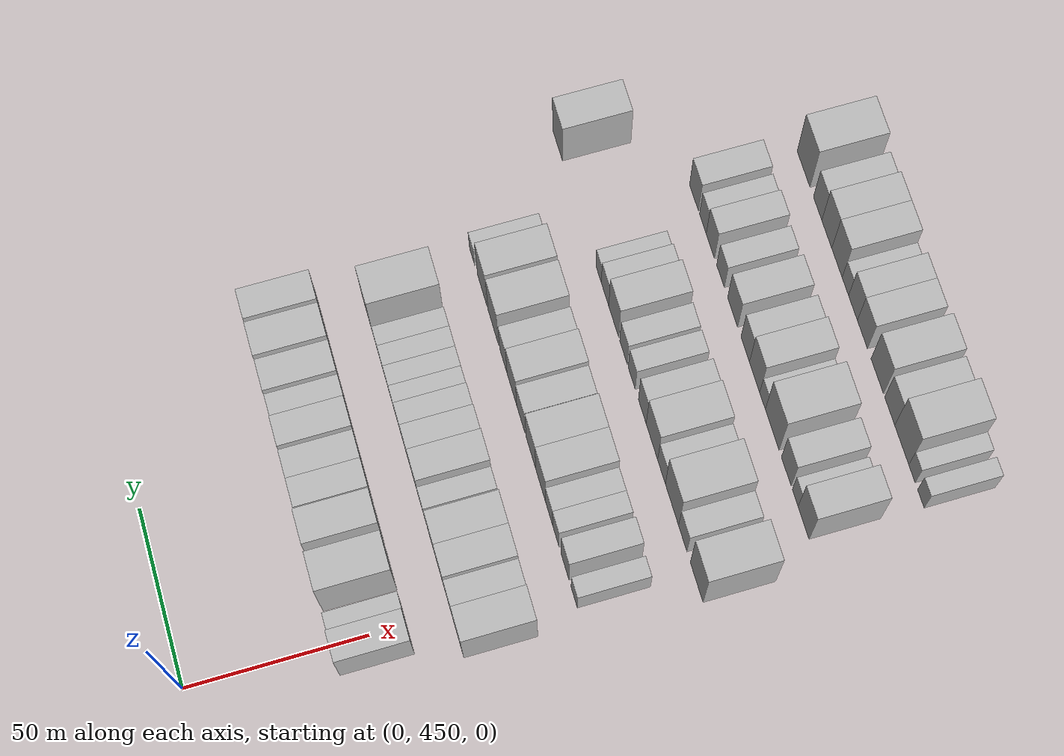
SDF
<sdf version="1.6">
 <world name="default">
  <model name="building_112">
   <static>1</static>
   <pose>50.0000 446.2338 0 0.000000 0.000000 0.000000</pose>
   <link name="link">
    <pose>0 0 9.00 0 0 0</pose>
    <collision name="collision"><geometry><box><size>20.0000 8.6609 18.0000</size></box></geometry></collision>
    <visual name="visual">
     <cast_shadows>0</cast_shadows>
     <geometry><box><size>20.0000 8.6609 18.0000</size></box></geometry>
     <material>
      <script>
       <uri>model://HANNAS_wall/materials/scripts</uri>
       <uri>model://HANNAS_wall/materials/textures</uri>
       <name>vrc/HANNAS_wall</name>
      </script>
     </material>
    </visual>
   </link>
  </model>
  <model name="building_113">
   <static>1</static>
   <pose>50.0000 453.5342 0 0.000000 0.000000 0.000000</pose>
   <link name="link">
    <pose>0 0 6.00 0 0 0</pose>
    <collision name="collision"><geometry><box><size>20.0000 5.9399 12.0000</size></box></geometry></collision>
    <visual name="visual">
     <cast_shadows>0</cast_shadows>
     <geometry><box><size>20.0000 5.9399 12.0000</size></box></geometry>
     <material>
      <script>
       <uri>model://HANNAS_wall/materials/scripts</uri>
       <uri>model://HANNAS_wall/materials/textures</uri>
       <name>vrc/HANNAS_wall</name>
      </script>
     </material>
    </visual>
   </link>
  </model>
  <model name="building_114">
   <static>1</static>
   <pose>50.0000 464.8538 0 0.000000 0.000000 0.000000</pose>
   <link name="link">
    <pose>0 0 12.00 0 0 0</pose>
    <collision name="collision"><geometry><box><size>20.0000 10.6993 24.0000</size></box></geometry></collision>
    <visual name="visual">
     <cast_shadows>0</cast_shadows>
     <geometry><box><size>20.0000 10.6993 24.0000</size></box></geometry>
     <material>
      <script>
       <uri>model://HANNAS_wall/materials/scripts</uri>
       <uri>model://HANNAS_wall/materials/textures</uri>
       <name>vrc/HANNAS_wall</name>
      </script>
     </material>
    </visual>
   </link>
  </model>
  <model name="building_115">
   <static>1</static>
   <pose>50.0000 477.0107 0 0.000000 0.000000 0.000000</pose>
   <link name="link">
    <pose>0 0 12.00 0 0 0</pose>
    <collision name="collision"><geometry><box><size>20.0000 9.6145 24.0000</size></box></geometry></collision>
    <visual name="visual">
     <cast_shadows>0</cast_shadows>
     <geometry><box><size>20.0000 9.6145 24.0000</size></box></geometry>
     <material>
      <script>
       <uri>model://HANNAS_wall/materials/scripts</uri>
       <uri>model://HANNAS_wall/materials/textures</uri>
       <name>vrc/HANNAS_wall</name>
      </script>
     </material>
    </visual>
   </link>
  </model>
  <model name="building_116">
   <static>1</static>
   <pose>50.0000 487.8643 0 0.000000 0.000000 0.000000</pose>
   <link name="link">
    <pose>0 0 9.00 0 0 0</pose>
    <collision name="collision"><geometry><box><size>20.0000 8.0927 18.0000</size></box></geometry></collision>
    <visual name="visual">
     <cast_shadows>0</cast_shadows>
     <geometry><box><size>20.0000 8.0927 18.0000</size></box></geometry>
     <material>
      <script>
       <uri>model://HANNAS_wall/materials/scripts</uri>
       <uri>model://HANNAS_wall/materials/textures</uri>
       <name>vrc/HANNAS_wall</name>
      </script>
     </material>
    </visual>
   </link>
  </model>
  <model name="building_117">
   <static>1</static>
   <pose>50.0000 495.8843 0 0.000000 0.000000 0.000000</pose>
   <link name="link">
    <pose>0 0 9.00 0 0 0</pose>
    <collision name="collision"><geometry><box><size>20.0000 7.9472 18.0000</size></box></geometry></collision>
    <visual name="visual">
     <cast_shadows>0</cast_shadows>
     <geometry><box><size>20.0000 7.9472 18.0000</size></box></geometry>
     <material>
      <script>
       <uri>model://HANNAS_wall/materials/scripts</uri>
       <uri>model://HANNAS_wall/materials/textures</uri>
       <name>vrc/HANNAS_wall</name>
      </script>
     </material>
    </visual>
   </link>
  </model>
  <model name="building_118">
   <static>1</static>
   <pose>50.0000 505.1631 0 0.000000 0.000000 0.000000</pose>
   <link name="link">
    <pose>0 0 9.00 0 0 0</pose>
    <collision name="collision"><geometry><box><size>20.0000 8.6106 18.0000</size></box></geometry></collision>
    <visual name="visual">
     <cast_shadows>0</cast_shadows>
     <geometry><box><size>20.0000 8.6106 18.0000</size></box></geometry>
     <material>
      <script>
       <uri>model://HANNAS_wall/materials/scripts</uri>
       <uri>model://HANNAS_wall/materials/textures</uri>
       <name>vrc/HANNAS_wall</name>
      </script>
     </material>
    </visual>
   </link>
  </model>
  <model name="building_119">
   <static>1</static>
   <pose>50.0000 513.0341 0 0.000000 0.000000 0.000000</pose>
   <link name="link">
    <pose>0 0 7.50 0 0 0</pose>
    <collision name="collision"><geometry><box><size>20.0000 7.1313 15.0000</size></box></geometry></collision>
    <visual name="visual">
     <cast_shadows>0</cast_shadows>
     <geometry><box><size>20.0000 7.1313 15.0000</size></box></geometry>
     <material>
      <script>
       <uri>model://HANNAS_wall/materials/scripts</uri>
       <uri>model://HANNAS_wall/materials/textures</uri>
       <name>vrc/HANNAS_wall</name>
      </script>
     </material>
    </visual>
   </link>
  </model>
  <model name="building_120">
   <static>1</static>
   <pose>50.0000 521.0960 0 0.000000 0.000000 0.000000</pose>
   <link name="link">
    <pose>0 0 9.00 0 0 0</pose>
    <collision name="collision"><geometry><box><size>20.0000 8.9926 18.0000</size></box></geometry></collision>
    <visual name="visual">
     <cast_shadows>0</cast_shadows>
     <geometry><box><size>20.0000 8.9926 18.0000</size></box></geometry>
     <material>
      <script>
       <uri>model://HANNAS_wall/materials/scripts</uri>
       <uri>model://HANNAS_wall/materials/textures</uri>
       <name>vrc/HANNAS_wall</name>
      </script>
     </material>
    </visual>
   </link>
  </model>
  <model name="building_121">
   <static>1</static>
   <pose>50.0000 530.4503 0 0.000000 0.000000 0.000000</pose>
   <link name="link">
    <pose>0 0 10.50 0 0 0</pose>
    <collision name="collision"><geometry><box><size>20.0000 9.7160 21.0000</size></box></geometry></collision>
    <visual name="visual">
     <cast_shadows>0</cast_shadows>
     <geometry><box><size>20.0000 9.7160 21.0000</size></box></geometry>
     <material>
      <script>
       <uri>model://HANNAS_wall/materials/scripts</uri>
       <uri>model://HANNAS_wall/materials/textures</uri>
       <name>vrc/HANNAS_wall</name>
      </script>
     </material>
    </visual>
   </link>
  </model>
  <model name="building_122">
   <static>1</static>
   <pose>50.0000 540.6062 0 0.000000 0.000000 0.000000</pose>
   <link name="link">
    <pose>0 0 10.50 0 0 0</pose>
    <collision name="collision"><geometry><box><size>20.0000 8.5957 21.0000</size></box></geometry></collision>
    <visual name="visual">
     <cast_shadows>0</cast_shadows>
     <geometry><box><size>20.0000 8.5957 21.0000</size></box></geometry>
     <material>
      <script>
       <uri>model://HANNAS_wall/materials/scripts</uri>
       <uri>model://HANNAS_wall/materials/textures</uri>
       <name>vrc/HANNAS_wall</name>
      </script>
     </material>
    </visual>
   </link>
  </model>
  <model name="building_234">
   <static>1</static>
   <pose>82.0000 442.0904 0 0.000000 0.000000 0.000000</pose>
   <link name="link">
    <pose>0 0 10.50 0 0 0</pose>
    <collision name="collision"><geometry><box><size>20.0000 9.4982 21.0000</size></box></geometry></collision>
    <visual name="visual">
     <cast_shadows>0</cast_shadows>
     <geometry><box><size>20.0000 9.4982 21.0000</size></box></geometry>
     <material>
      <script>
       <uri>model://HANNAS_wall/materials/scripts</uri>
       <uri>model://HANNAS_wall/materials/textures</uri>
       <name>vrc/HANNAS_wall</name>
      </script>
     </material>
    </visual>
   </link>
  </model>
  <model name="building_235">
   <static>1</static>
   <pose>82.0000 450.7334 0 0.000000 0.000000 0.000000</pose>
   <link name="link">
    <pose>0 0 9.00 0 0 0</pose>
    <collision name="collision"><geometry><box><size>20.0000 7.7878 18.0000</size></box></geometry></collision>
    <visual name="visual">
     <cast_shadows>0</cast_shadows>
     <geometry><box><size>20.0000 7.7878 18.0000</size></box></geometry>
     <material>
      <script>
       <uri>model://HANNAS_wall/materials/scripts</uri>
       <uri>model://HANNAS_wall/materials/textures</uri>
       <name>vrc/HANNAS_wall</name>
      </script>
     </material>
    </visual>
   </link>
  </model>
  <model name="building_236">
   <static>1</static>
   <pose>82.0000 459.0969 0 0.000000 0.000000 0.000000</pose>
   <link name="link">
    <pose>0 0 10.50 0 0 0</pose>
    <collision name="collision"><geometry><box><size>20.0000 8.9391 21.0000</size></box></geometry></collision>
    <visual name="visual">
     <cast_shadows>0</cast_shadows>
     <geometry><box><size>20.0000 8.9391 21.0000</size></box></geometry>
     <material>
      <script>
       <uri>model://HANNAS_wall/materials/scripts</uri>
       <uri>model://HANNAS_wall/materials/textures</uri>
       <name>vrc/HANNAS_wall</name>
      </script>
     </material>
    </visual>
   </link>
  </model>
  <model name="building_237">
   <static>1</static>
   <pose>82.0000 468.1478 0 0.000000 0.000000 0.000000</pose>
   <link name="link">
    <pose>0 0 10.50 0 0 0</pose>
    <collision name="collision"><geometry><box><size>20.0000 9.1627 21.0000</size></box></geometry></collision>
    <visual name="visual">
     <cast_shadows>0</cast_shadows>
     <geometry><box><size>20.0000 9.1627 21.0000</size></box></geometry>
     <material>
      <script>
       <uri>model://HANNAS_wall/materials/scripts</uri>
       <uri>model://HANNAS_wall/materials/textures</uri>
       <name>vrc/HANNAS_wall</name>
      </script>
     </material>
    </visual>
   </link>
  </model>
  <model name="building_238">
   <static>1</static>
   <pose>82.0000 477.8316 0 0.000000 0.000000 0.000000</pose>
   <link name="link">
    <pose>0 0 7.50 0 0 0</pose>
    <collision name="collision"><geometry><box><size>20.0000 6.2048 15.0000</size></box></geometry></collision>
    <visual name="visual">
     <cast_shadows>0</cast_shadows>
     <geometry><box><size>20.0000 6.2048 15.0000</size></box></geometry>
     <material>
      <script>
       <uri>model://HANNAS_wall/materials/scripts</uri>
       <uri>model://HANNAS_wall/materials/textures</uri>
       <name>vrc/HANNAS_wall</name>
      </script>
     </material>
    </visual>
   </link>
  </model>
  <model name="building_239">
   <static>1</static>
   <pose>82.0000 485.3627 0 0.000000 0.000000 0.000000</pose>
   <link name="link">
    <pose>0 0 10.50 0 0 0</pose>
    <collision name="collision"><geometry><box><size>20.0000 8.8574 21.0000</size></box></geometry></collision>
    <visual name="visual">
     <cast_shadows>0</cast_shadows>
     <geometry><box><size>20.0000 8.8574 21.0000</size></box></geometry>
     <material>
      <script>
       <uri>model://HANNAS_wall/materials/scripts</uri>
       <uri>model://HANNAS_wall/materials/textures</uri>
       <name>vrc/HANNAS_wall</name>
      </script>
     </material>
    </visual>
   </link>
  </model>
  <model name="building_240">
   <static>1</static>
   <pose>82.0000 493.7003 0 0.000000 0.000000 0.000000</pose>
   <link name="link">
    <pose>0 0 9.00 0 0 0</pose>
    <collision name="collision"><geometry><box><size>20.0000 7.8179 18.0000</size></box></geometry></collision>
    <visual name="visual">
     <cast_shadows>0</cast_shadows>
     <geometry><box><size>20.0000 7.8179 18.0000</size></box></geometry>
     <material>
      <script>
       <uri>model://HANNAS_wall/materials/scripts</uri>
       <uri>model://HANNAS_wall/materials/textures</uri>
       <name>vrc/HANNAS_wall</name>
      </script>
     </material>
    </visual>
   </link>
  </model>
  <model name="building_241">
   <static>1</static>
   <pose>82.0000 501.2097 0 0.000000 0.000000 0.000000</pose>
   <link name="link">
    <pose>0 0 7.50 0 0 0</pose>
    <collision name="collision"><geometry><box><size>20.0000 7.2009 15.0000</size></box></geometry></collision>
    <visual name="visual">
     <cast_shadows>0</cast_shadows>
     <geometry><box><size>20.0000 7.2009 15.0000</size></box></geometry>
     <material>
      <script>
       <uri>model://HANNAS_wall/materials/scripts</uri>
       <uri>model://HANNAS_wall/materials/textures</uri>
       <name>vrc/HANNAS_wall</name>
      </script>
     </material>
    </visual>
   </link>
  </model>
  <model name="building_242">
   <static>1</static>
   <pose>82.0000 507.7587 0 0.000000 0.000000 0.000000</pose>
   <link name="link">
    <pose>0 0 6.00 0 0 0</pose>
    <collision name="collision"><geometry><box><size>20.0000 5.8970 12.0000</size></box></geometry></collision>
    <visual name="visual">
     <cast_shadows>0</cast_shadows>
     <geometry><box><size>20.0000 5.8970 12.0000</size></box></geometry>
     <material>
      <script>
       <uri>model://HANNAS_wall/materials/scripts</uri>
       <uri>model://HANNAS_wall/materials/textures</uri>
       <name>vrc/HANNAS_wall</name>
      </script>
     </material>
    </visual>
   </link>
  </model>
  <model name="building_243">
   <static>1</static>
   <pose>82.0000 513.5934 0 0.000000 0.000000 0.000000</pose>
   <link name="link">
    <pose>0 0 6.00 0 0 0</pose>
    <collision name="collision"><geometry><box><size>20.0000 5.7724 12.0000</size></box></geometry></collision>
    <visual name="visual">
     <cast_shadows>0</cast_shadows>
     <geometry><box><size>20.0000 5.7724 12.0000</size></box></geometry>
     <material>
      <script>
       <uri>model://HANNAS_wall/materials/scripts</uri>
       <uri>model://HANNAS_wall/materials/textures</uri>
       <name>vrc/HANNAS_wall</name>
      </script>
     </material>
    </visual>
   </link>
  </model>
  <model name="building_244">
   <static>1</static>
   <pose>82.0000 519.4344 0 0.000000 0.000000 0.000000</pose>
   <link name="link">
    <pose>0 0 6.00 0 0 0</pose>
    <collision name="collision"><geometry><box><size>20.0000 5.9096 12.0000</size></box></geometry></collision>
    <visual name="visual">
     <cast_shadows>0</cast_shadows>
     <geometry><box><size>20.0000 5.9096 12.0000</size></box></geometry>
     <material>
      <script>
       <uri>model://HANNAS_wall/materials/scripts</uri>
       <uri>model://HANNAS_wall/materials/textures</uri>
       <name>vrc/HANNAS_wall</name>
      </script>
     </material>
    </visual>
   </link>
  </model>
  <model name="building_245">
   <static>1</static>
   <pose>82.0000 525.1894 0 0.000000 0.000000 0.000000</pose>
   <link name="link">
    <pose>0 0 6.00 0 0 0</pose>
    <collision name="collision"><geometry><box><size>20.0000 5.6005 12.0000</size></box></geometry></collision>
    <visual name="visual">
     <cast_shadows>0</cast_shadows>
     <geometry><box><size>20.0000 5.6005 12.0000</size></box></geometry>
     <material>
      <script>
       <uri>model://HANNAS_wall/materials/scripts</uri>
       <uri>model://HANNAS_wall/materials/textures</uri>
       <name>vrc/HANNAS_wall</name>
      </script>
     </material>
    </visual>
   </link>
  </model>
  <model name="building_246">
   <static>1</static>
   <pose>82.0000 535.5525 0 0.000000 0.000000 0.000000</pose>
   <link name="link">
    <pose>0 0 12.00 0 0 0</pose>
    <collision name="collision"><geometry><box><size>20.0000 11.1256 24.0000</size></box></geometry></collision>
    <visual name="visual">
     <cast_shadows>0</cast_shadows>
     <geometry><box><size>20.0000 11.1256 24.0000</size></box></geometry>
     <material>
      <script>
       <uri>model://HANNAS_wall/materials/scripts</uri>
       <uri>model://HANNAS_wall/materials/textures</uri>
       <name>vrc/HANNAS_wall</name>
      </script>
     </material>
    </visual>
   </link>
  </model>
  <model name="building_361">
   <static>1</static>
   <pose>114.0000 444.5660 0 0.000000 0.000000 0.000000</pose>
   <link name="link">
    <pose>0 0 6.00 0 0 0</pose>
    <collision name="collision"><geometry><box><size>20.0000 5.7229 12.0000</size></box></geometry></collision>
    <visual name="visual">
     <cast_shadows>0</cast_shadows>
     <geometry><box><size>20.0000 5.7229 12.0000</size></box></geometry>
     <material>
      <script>
       <uri>model://HANNAS_wall/materials/scripts</uri>
       <uri>model://HANNAS_wall/materials/textures</uri>
       <name>vrc/HANNAS_wall</name>
      </script>
     </material>
    </visual>
   </link>
  </model>
  <model name="building_362">
   <static>1</static>
   <pose>114.0000 453.0689 0 0.000000 0.000000 0.000000</pose>
   <link name="link">
    <pose>0 0 9.00 0 0 0</pose>
    <collision name="collision"><geometry><box><size>20.0000 7.2829 18.0000</size></box></geometry></collision>
    <visual name="visual">
     <cast_shadows>0</cast_shadows>
     <geometry><box><size>20.0000 7.2829 18.0000</size></box></geometry>
     <material>
      <script>
       <uri>model://HANNAS_wall/materials/scripts</uri>
       <uri>model://HANNAS_wall/materials/textures</uri>
       <name>vrc/HANNAS_wall</name>
      </script>
     </material>
    </visual>
   </link>
  </model>
  <model name="building_363">
   <static>1</static>
   <pose>114.0000 461.7536 0 0.000000 0.000000 0.000000</pose>
   <link name="link">
    <pose>0 0 7.50 0 0 0</pose>
    <collision name="collision"><geometry><box><size>20.0000 6.0864 15.0000</size></box></geometry></collision>
    <visual name="visual">
     <cast_shadows>0</cast_shadows>
     <geometry><box><size>20.0000 6.0864 15.0000</size></box></geometry>
     <material>
      <script>
       <uri>model://HANNAS_wall/materials/scripts</uri>
       <uri>model://HANNAS_wall/materials/textures</uri>
       <name>vrc/HANNAS_wall</name>
      </script>
     </material>
    </visual>
   </link>
  </model>
  <model name="building_364">
   <static>1</static>
   <pose>114.0000 468.0591 0 0.000000 0.000000 0.000000</pose>
   <link name="link">
    <pose>0 0 7.50 0 0 0</pose>
    <collision name="collision"><geometry><box><size>20.0000 6.5246 15.0000</size></box></geometry></collision>
    <visual name="visual">
     <cast_shadows>0</cast_shadows>
     <geometry><box><size>20.0000 6.5246 15.0000</size></box></geometry>
     <material>
      <script>
       <uri>model://HANNAS_wall/materials/scripts</uri>
       <uri>model://HANNAS_wall/materials/textures</uri>
       <name>vrc/HANNAS_wall</name>
      </script>
     </material>
    </visual>
   </link>
  </model>
  <model name="building_365">
   <static>1</static>
   <pose>114.0000 476.0942 0 0.000000 0.000000 0.000000</pose>
   <link name="link">
    <pose>0 0 10.50 0 0 0</pose>
    <collision name="collision"><geometry><box><size>20.0000 9.5456 21.0000</size></box></geometry></collision>
    <visual name="visual">
     <cast_shadows>0</cast_shadows>
     <geometry><box><size>20.0000 9.5456 21.0000</size></box></geometry>
     <material>
      <script>
       <uri>model://HANNAS_wall/materials/scripts</uri>
       <uri>model://HANNAS_wall/materials/textures</uri>
       <name>vrc/HANNAS_wall</name>
      </script>
     </material>
    </visual>
   </link>
  </model>
  <model name="building_366">
   <static>1</static>
   <pose>114.0000 485.5832 0 0.000000 0.000000 0.000000</pose>
   <link name="link">
    <pose>0 0 10.50 0 0 0</pose>
    <collision name="collision"><geometry><box><size>20.0000 9.4326 21.0000</size></box></geometry></collision>
    <visual name="visual">
     <cast_shadows>0</cast_shadows>
     <geometry><box><size>20.0000 9.4326 21.0000</size></box></geometry>
     <material>
      <script>
       <uri>model://HANNAS_wall/materials/scripts</uri>
       <uri>model://HANNAS_wall/materials/textures</uri>
       <name>vrc/HANNAS_wall</name>
      </script>
     </material>
    </visual>
   </link>
  </model>
  <model name="building_367">
   <static>1</static>
   <pose>114.0000 495.3467 0 0.000000 0.000000 0.000000</pose>
   <link name="link">
    <pose>0 0 9.00 0 0 0</pose>
    <collision name="collision"><geometry><box><size>20.0000 8.0943 18.0000</size></box></geometry></collision>
    <visual name="visual">
     <cast_shadows>0</cast_shadows>
     <geometry><box><size>20.0000 8.0943 18.0000</size></box></geometry>
     <material>
      <script>
       <uri>model://HANNAS_wall/materials/scripts</uri>
       <uri>model://HANNAS_wall/materials/textures</uri>
       <name>vrc/HANNAS_wall</name>
      </script>
     </material>
    </visual>
   </link>
  </model>
  <model name="building_368">
   <static>1</static>
   <pose>114.0000 504.1490 0 0.000000 0.000000 0.000000</pose>
   <link name="link">
    <pose>0 0 10.50 0 0 0</pose>
    <collision name="collision"><geometry><box><size>20.0000 9.5102 21.0000</size></box></geometry></collision>
    <visual name="visual">
     <cast_shadows>0</cast_shadows>
     <geometry><box><size>20.0000 9.5102 21.0000</size></box></geometry>
     <material>
      <script>
       <uri>model://HANNAS_wall/materials/scripts</uri>
       <uri>model://HANNAS_wall/materials/textures</uri>
       <name>vrc/HANNAS_wall</name>
      </script>
     </material>
    </visual>
   </link>
  </model>
  <model name="building_369">
   <static>1</static>
   <pose>114.0000 512.6534 0 0.000000 0.000000 0.000000</pose>
   <link name="link">
    <pose>0 0 9.00 0 0 0</pose>
    <collision name="collision"><geometry><box><size>20.0000 7.4988 18.0000</size></box></geometry></collision>
    <visual name="visual">
     <cast_shadows>0</cast_shadows>
     <geometry><box><size>20.0000 7.4988 18.0000</size></box></geometry>
     <material>
      <script>
       <uri>model://HANNAS_wall/materials/scripts</uri>
       <uri>model://HANNAS_wall/materials/textures</uri>
       <name>vrc/HANNAS_wall</name>
      </script>
     </material>
    </visual>
   </link>
  </model>
  <model name="building_370">
   <static>1</static>
   <pose>114.0000 522.6487 0 0.000000 0.000000 0.000000</pose>
   <link name="link">
    <pose>0 0 12.00 0 0 0</pose>
    <collision name="collision"><geometry><box><size>20.0000 10.4917 24.0000</size></box></geometry></collision>
    <visual name="visual">
     <cast_shadows>0</cast_shadows>
     <geometry><box><size>20.0000 10.4917 24.0000</size></box></geometry>
     <material>
      <script>
       <uri>model://HANNAS_wall/materials/scripts</uri>
       <uri>model://HANNAS_wall/materials/textures</uri>
       <name>vrc/HANNAS_wall</name>
      </script>
     </material>
    </visual>
   </link>
  </model>
  <model name="building_371">
   <static>1</static>
   <pose>114.0000 533.7536 0 0.000000 0.000000 0.000000</pose>
   <link name="link">
    <pose>0 0 12.00 0 0 0</pose>
    <collision name="collision"><geometry><box><size>20.0000 9.7181 24.0000</size></box></geometry></collision>
    <visual name="visual">
     <cast_shadows>0</cast_shadows>
     <geometry><box><size>20.0000 9.7181 24.0000</size></box></geometry>
     <material>
      <script>
       <uri>model://HANNAS_wall/materials/scripts</uri>
       <uri>model://HANNAS_wall/materials/textures</uri>
       <name>vrc/HANNAS_wall</name>
      </script>
     </material>
    </visual>
   </link>
  </model>
  <model name="building_372">
   <static>1</static>
   <pose>114.0000 544.1948 0 0.000000 0.000000 0.000000</pose>
   <link name="link">
    <pose>0 0 6.00 0 0 0</pose>
    <collision name="collision"><geometry><box><size>20.0000 5.1642 12.0000</size></box></geometry></collision>
    <visual name="visual">
     <cast_shadows>0</cast_shadows>
     <geometry><box><size>20.0000 5.1642 12.0000</size></box></geometry>
     <material>
      <script>
       <uri>model://HANNAS_wall/materials/scripts</uri>
       <uri>model://HANNAS_wall/materials/textures</uri>
       <name>vrc/HANNAS_wall</name>
      </script>
     </material>
    </visual>
   </link>
  </model>
  <model name="building_471">
   <static>1</static>
   <pose>146.0000 439.4495 0 0.000000 0.000000 0.000000</pose>
   <link name="link">
    <pose>0 0 12.00 0 0 0</pose>
    <collision name="collision"><geometry><box><size>20.0000 11.1708 24.0000</size></box></geometry></collision>
    <visual name="visual">
     <cast_shadows>0</cast_shadows>
     <geometry><box><size>20.0000 11.1708 24.0000</size></box></geometry>
     <material>
      <script>
       <uri>model://HANNAS_wall/materials/scripts</uri>
       <uri>model://HANNAS_wall/materials/textures</uri>
       <name>vrc/HANNAS_wall</name>
      </script>
     </material>
    </visual>
   </link>
  </model>
  <model name="building_472">
   <static>1</static>
   <pose>146.0000 451.7096 0 0.000000 0.000000 0.000000</pose>
   <link name="link">
    <pose>0 0 7.50 0 0 0</pose>
    <collision name="collision"><geometry><box><size>20.0000 7.3494 15.0000</size></box></geometry></collision>
    <visual name="visual">
     <cast_shadows>0</cast_shadows>
     <geometry><box><size>20.0000 7.3494 15.0000</size></box></geometry>
     <material>
      <script>
       <uri>model://HANNAS_wall/materials/scripts</uri>
       <uri>model://HANNAS_wall/materials/textures</uri>
       <name>vrc/HANNAS_wall</name>
      </script>
     </material>
    </visual>
   </link>
  </model>
  <model name="building_473">
   <static>1</static>
   <pose>146.0000 461.3372 0 0.000000 0.000000 0.000000</pose>
   <link name="link">
    <pose>0 0 12.00 0 0 0</pose>
    <collision name="collision"><geometry><box><size>20.0000 11.9058 24.0000</size></box></geometry></collision>
    <visual name="visual">
     <cast_shadows>0</cast_shadows>
     <geometry><box><size>20.0000 11.9058 24.0000</size></box></geometry>
     <material>
      <script>
       <uri>model://HANNAS_wall/materials/scripts</uri>
       <uri>model://HANNAS_wall/materials/textures</uri>
       <name>vrc/HANNAS_wall</name>
      </script>
     </material>
    </visual>
   </link>
  </model>
  <model name="building_474">
   <static>1</static>
   <pose>146.0000 470.7799 0 0.000000 0.000000 0.000000</pose>
   <link name="link">
    <pose>0 0 7.50 0 0 0</pose>
    <collision name="collision"><geometry><box><size>20.0000 6.9796 15.0000</size></box></geometry></collision>
    <visual name="visual">
     <cast_shadows>0</cast_shadows>
     <geometry><box><size>20.0000 6.9796 15.0000</size></box></geometry>
     <material>
      <script>
       <uri>model://HANNAS_wall/materials/scripts</uri>
       <uri>model://HANNAS_wall/materials/textures</uri>
       <name>vrc/HANNAS_wall</name>
      </script>
     </material>
    </visual>
   </link>
  </model>
  <model name="building_475">
   <static>1</static>
   <pose>146.0000 479.5009 0 0.000000 0.000000 0.000000</pose>
   <link name="link">
    <pose>0 0 10.50 0 0 0</pose>
    <collision name="collision"><geometry><box><size>20.0000 10.4623 21.0000</size></box></geometry></collision>
    <visual name="visual">
     <cast_shadows>0</cast_shadows>
     <geometry><box><size>20.0000 10.4623 21.0000</size></box></geometry>
     <material>
      <script>
       <uri>model://HANNAS_wall/materials/scripts</uri>
       <uri>model://HANNAS_wall/materials/textures</uri>
       <name>vrc/HANNAS_wall</name>
      </script>
     </material>
    </visual>
   </link>
  </model>
  <model name="building_476">
   <static>1</static>
   <pose>146.0000 488.3346 0 0.000000 0.000000 0.000000</pose>
   <link name="link">
    <pose>0 0 9.00 0 0 0</pose>
    <collision name="collision"><geometry><box><size>20.0000 7.2052 18.0000</size></box></geometry></collision>
    <visual name="visual">
     <cast_shadows>0</cast_shadows>
     <geometry><box><size>20.0000 7.2052 18.0000</size></box></geometry>
     <material>
      <script>
       <uri>model://HANNAS_wall/materials/scripts</uri>
       <uri>model://HANNAS_wall/materials/textures</uri>
       <name>vrc/HANNAS_wall</name>
      </script>
     </material>
    </visual>
   </link>
  </model>
  <model name="building_477">
   <static>1</static>
   <pose>146.0000 498.1449 0 0.000000 0.000000 0.000000</pose>
   <link name="link">
    <pose>0 0 7.50 0 0 0</pose>
    <collision name="collision"><geometry><box><size>20.0000 6.4154 15.0000</size></box></geometry></collision>
    <visual name="visual">
     <cast_shadows>0</cast_shadows>
     <geometry><box><size>20.0000 6.4154 15.0000</size></box></geometry>
     <material>
      <script>
       <uri>model://HANNAS_wall/materials/scripts</uri>
       <uri>model://HANNAS_wall/materials/textures</uri>
       <name>vrc/HANNAS_wall</name>
      </script>
     </material>
    </visual>
   </link>
  </model>
  <model name="building_478">
   <static>1</static>
   <pose>146.0000 505.8616 0 0.000000 0.000000 0.000000</pose>
   <link name="link">
    <pose>0 0 7.50 0 0 0</pose>
    <collision name="collision"><geometry><box><size>20.0000 7.0180 15.0000</size></box></geometry></collision>
    <visual name="visual">
     <cast_shadows>0</cast_shadows>
     <geometry><box><size>20.0000 7.0180 15.0000</size></box></geometry>
     <material>
      <script>
       <uri>model://HANNAS_wall/materials/scripts</uri>
       <uri>model://HANNAS_wall/materials/textures</uri>
       <name>vrc/HANNAS_wall</name>
      </script>
     </material>
    </visual>
   </link>
  </model>
  <model name="building_479">
   <static>1</static>
   <pose>146.0000 515.0715 0 0.000000 0.000000 0.000000</pose>
   <link name="link">
    <pose>0 0 10.50 0 0 0</pose>
    <collision name="collision"><geometry><box><size>20.0000 9.4019 21.0000</size></box></geometry></collision>
    <visual name="visual">
     <cast_shadows>0</cast_shadows>
     <geometry><box><size>20.0000 9.4019 21.0000</size></box></geometry>
     <material>
      <script>
       <uri>model://HANNAS_wall/materials/scripts</uri>
       <uri>model://HANNAS_wall/materials/textures</uri>
       <name>vrc/HANNAS_wall</name>
      </script>
     </material>
    </visual>
   </link>
  </model>
  <model name="building_480">
   <static>1</static>
   <pose>146.0000 523.3459 0 0.000000 0.000000 0.000000</pose>
   <link name="link">
    <pose>0 0 7.50 0 0 0</pose>
    <collision name="collision"><geometry><box><size>20.0000 7.1468 15.0000</size></box></geometry></collision>
    <visual name="visual">
     <cast_shadows>0</cast_shadows>
     <geometry><box><size>20.0000 7.1468 15.0000</size></box></geometry>
     <material>
      <script>
       <uri>model://HANNAS_wall/materials/scripts</uri>
       <uri>model://HANNAS_wall/materials/textures</uri>
       <name>vrc/HANNAS_wall</name>
      </script>
     </material>
    </visual>
   </link>
  </model>
  <model name="building_481">
   <static>1</static>
   <pose>146.0000 529.5125 0 0.000000 0.000000 0.000000</pose>
   <link name="link">
    <pose>0 0 6.00 0 0 0</pose>
    <collision name="collision"><geometry><box><size>20.0000 5.1866 12.0000</size></box></geometry></collision>
    <visual name="visual">
     <cast_shadows>0</cast_shadows>
     <geometry><box><size>20.0000 5.1866 12.0000</size></box></geometry>
     <material>
      <script>
       <uri>model://HANNAS_wall/materials/scripts</uri>
       <uri>model://HANNAS_wall/materials/textures</uri>
       <name>vrc/HANNAS_wall</name>
      </script>
     </material>
    </visual>
   </link>
  </model>
  <model name="building_482">
   <static>1</static>
   <pose>146.0000 569.8055 0 0.000000 0.000000 0.000000</pose>
   <link name="link">
    <pose>0 0 10.50 0 0 0</pose>
    <collision name="collision"><geometry><box><size>20.0000 9.7998 21.0000</size></box></geometry></collision>
    <visual name="visual">
     <cast_shadows>0</cast_shadows>
     <geometry><box><size>20.0000 9.7998 21.0000</size></box></geometry>
     <material>
      <script>
       <uri>model://HANNAS_wall/materials/scripts</uri>
       <uri>model://HANNAS_wall/materials/textures</uri>
       <name>vrc/HANNAS_wall</name>
      </script>
     </material>
    </visual>
   </link>
  </model>
  <model name="building_591">
   <static>1</static>
   <pose>178.0000 446.8443 0 0.000000 0.000000 0.000000</pose>
   <link name="link">
    <pose>0 0 10.50 0 0 0</pose>
    <collision name="collision"><geometry><box><size>20.0000 9.2918 21.0000</size></box></geometry></collision>
    <visual name="visual">
     <cast_shadows>0</cast_shadows>
     <geometry><box><size>20.0000 9.2918 21.0000</size></box></geometry>
     <material>
      <script>
       <uri>model://HANNAS_wall/materials/scripts</uri>
       <uri>model://HANNAS_wall/materials/textures</uri>
       <name>vrc/HANNAS_wall</name>
      </script>
     </material>
    </visual>
   </link>
  </model>
  <model name="building_592">
   <static>1</static>
   <pose>178.0000 453.9352 0 0.000000 0.000000 0.000000</pose>
   <link name="link">
    <pose>0 0 6.00 0 0 0</pose>
    <collision name="collision"><geometry><box><size>20.0000 4.8898 12.0000</size></box></geometry></collision>
    <visual name="visual">
     <cast_shadows>0</cast_shadows>
     <geometry><box><size>20.0000 4.8898 12.0000</size></box></geometry>
     <material>
      <script>
       <uri>model://HANNAS_wall/materials/scripts</uri>
       <uri>model://HANNAS_wall/materials/textures</uri>
       <name>vrc/HANNAS_wall</name>
      </script>
     </material>
    </visual>
   </link>
  </model>
  <model name="building_593">
   <static>1</static>
   <pose>178.0000 461.5483 0 0.000000 0.000000 0.000000</pose>
   <link name="link">
    <pose>0 0 9.00 0 0 0</pose>
    <collision name="collision"><geometry><box><size>20.0000 8.3365 18.0000</size></box></geometry></collision>
    <visual name="visual">
     <cast_shadows>0</cast_shadows>
     <geometry><box><size>20.0000 8.3365 18.0000</size></box></geometry>
     <material>
      <script>
       <uri>model://HANNAS_wall/materials/scripts</uri>
       <uri>model://HANNAS_wall/materials/textures</uri>
       <name>vrc/HANNAS_wall</name>
      </script>
     </material>
    </visual>
   </link>
  </model>
  <model name="building_594">
   <static>1</static>
   <pose>178.0000 473.6701 0 0.000000 0.000000 0.000000</pose>
   <link name="link">
    <pose>0 0 12.00 0 0 0</pose>
    <collision name="collision"><geometry><box><size>20.0000 11.9069 24.0000</size></box></geometry></collision>
    <visual name="visual">
     <cast_shadows>0</cast_shadows>
     <geometry><box><size>20.0000 11.9069 24.0000</size></box></geometry>
     <material>
      <script>
       <uri>model://HANNAS_wall/materials/scripts</uri>
       <uri>model://HANNAS_wall/materials/textures</uri>
       <name>vrc/HANNAS_wall</name>
      </script>
     </material>
    </visual>
   </link>
  </model>
  <model name="building_595">
   <static>1</static>
   <pose>178.0000 482.1223 0 0.000000 0.000000 0.000000</pose>
   <link name="link">
    <pose>0 0 6.00 0 0 0</pose>
    <collision name="collision"><geometry><box><size>20.0000 4.9976 12.0000</size></box></geometry></collision>
    <visual name="visual">
     <cast_shadows>0</cast_shadows>
     <geometry><box><size>20.0000 4.9976 12.0000</size></box></geometry>
     <material>
      <script>
       <uri>model://HANNAS_wall/materials/scripts</uri>
       <uri>model://HANNAS_wall/materials/textures</uri>
       <name>vrc/HANNAS_wall</name>
      </script>
     </material>
    </visual>
   </link>
  </model>
  <model name="building_596">
   <static>1</static>
   <pose>178.0000 489.1215 0 0.000000 0.000000 0.000000</pose>
   <link name="link">
    <pose>0 0 10.50 0 0 0</pose>
    <collision name="collision"><geometry><box><size>20.0000 9.0008 21.0000</size></box></geometry></collision>
    <visual name="visual">
     <cast_shadows>0</cast_shadows>
     <geometry><box><size>20.0000 9.0008 21.0000</size></box></geometry>
     <material>
      <script>
       <uri>model://HANNAS_wall/materials/scripts</uri>
       <uri>model://HANNAS_wall/materials/textures</uri>
       <name>vrc/HANNAS_wall</name>
      </script>
     </material>
    </visual>
   </link>
  </model>
  <model name="building_597">
   <static>1</static>
   <pose>178.0000 497.3705 0 0.000000 0.000000 0.000000</pose>
   <link name="link">
    <pose>0 0 9.00 0 0 0</pose>
    <collision name="collision"><geometry><box><size>20.0000 7.4971 18.0000</size></box></geometry></collision>
    <visual name="visual">
     <cast_shadows>0</cast_shadows>
     <geometry><box><size>20.0000 7.4971 18.0000</size></box></geometry>
     <material>
      <script>
       <uri>model://HANNAS_wall/materials/scripts</uri>
       <uri>model://HANNAS_wall/materials/textures</uri>
       <name>vrc/HANNAS_wall</name>
      </script>
     </material>
    </visual>
   </link>
  </model>
  <model name="building_598">
   <static>1</static>
   <pose>178.0000 508.6089 0 0.000000 0.000000 0.000000</pose>
   <link name="link">
    <pose>0 0 9.00 0 0 0</pose>
    <collision name="collision"><geometry><box><size>20.0000 8.9797 18.0000</size></box></geometry></collision>
    <visual name="visual">
     <cast_shadows>0</cast_shadows>
     <geometry><box><size>20.0000 8.9797 18.0000</size></box></geometry>
     <material>
      <script>
       <uri>model://HANNAS_wall/materials/scripts</uri>
       <uri>model://HANNAS_wall/materials/textures</uri>
       <name>vrc/HANNAS_wall</name>
      </script>
     </material>
    </visual>
   </link>
  </model>
  <model name="building_599">
   <static>1</static>
   <pose>178.0000 519.5574 0 0.000000 0.000000 0.000000</pose>
   <link name="link">
    <pose>0 0 7.50 0 0 0</pose>
    <collision name="collision"><geometry><box><size>20.0000 6.9173 15.0000</size></box></geometry></collision>
    <visual name="visual">
     <cast_shadows>0</cast_shadows>
     <geometry><box><size>20.0000 6.9173 15.0000</size></box></geometry>
     <material>
      <script>
       <uri>model://HANNAS_wall/materials/scripts</uri>
       <uri>model://HANNAS_wall/materials/textures</uri>
       <name>vrc/HANNAS_wall</name>
      </script>
     </material>
    </visual>
   </link>
  </model>
  <model name="building_600">
   <static>1</static>
   <pose>178.0000 528.8172 0 0.000000 0.000000 0.000000</pose>
   <link name="link">
    <pose>0 0 9.00 0 0 0</pose>
    <collision name="collision"><geometry><box><size>20.0000 7.6022 18.0000</size></box></geometry></collision>
    <visual name="visual">
     <cast_shadows>0</cast_shadows>
     <geometry><box><size>20.0000 7.6022 18.0000</size></box></geometry>
     <material>
      <script>
       <uri>model://HANNAS_wall/materials/scripts</uri>
       <uri>model://HANNAS_wall/materials/textures</uri>
       <name>vrc/HANNAS_wall</name>
      </script>
     </material>
    </visual>
   </link>
  </model>
  <model name="building_601">
   <static>1</static>
   <pose>178.0000 535.6901 0 0.000000 0.000000 0.000000</pose>
   <link name="link">
    <pose>0 0 7.50 0 0 0</pose>
    <collision name="collision"><geometry><box><size>20.0000 6.1435 15.0000</size></box></geometry></collision>
    <visual name="visual">
     <cast_shadows>0</cast_shadows>
     <geometry><box><size>20.0000 6.1435 15.0000</size></box></geometry>
     <material>
      <script>
       <uri>model://HANNAS_wall/materials/scripts</uri>
       <uri>model://HANNAS_wall/materials/textures</uri>
       <name>vrc/HANNAS_wall</name>
      </script>
     </material>
    </visual>
   </link>
  </model>
  <model name="building_602">
   <static>1</static>
   <pose>178.0000 543.8804 0 0.000000 0.000000 0.000000</pose>
   <link name="link">
    <pose>0 0 9.00 0 0 0</pose>
    <collision name="collision"><geometry><box><size>20.0000 8.2371 18.0000</size></box></geometry></collision>
    <visual name="visual">
     <cast_shadows>0</cast_shadows>
     <geometry><box><size>20.0000 8.2371 18.0000</size></box></geometry>
     <material>
      <script>
       <uri>model://HANNAS_wall/materials/scripts</uri>
       <uri>model://HANNAS_wall/materials/textures</uri>
       <name>vrc/HANNAS_wall</name>
      </script>
     </material>
    </visual>
   </link>
  </model>
  <model name="building_700">
   <static>1</static>
   <pose>210.0000 444.3261 0 0.000000 0.000000 0.000000</pose>
   <link name="link">
    <pose>0 0 6.00 0 0 0</pose>
    <collision name="collision"><geometry><box><size>20.0000 5.2602 12.0000</size></box></geometry></collision>
    <visual name="visual">
     <cast_shadows>0</cast_shadows>
     <geometry><box><size>20.0000 5.2602 12.0000</size></box></geometry>
     <material>
      <script>
       <uri>model://HANNAS_wall/materials/scripts</uri>
       <uri>model://HANNAS_wall/materials/textures</uri>
       <name>vrc/HANNAS_wall</name>
      </script>
     </material>
    </visual>
   </link>
  </model>
  <model name="building_701">
   <static>1</static>
   <pose>210.0000 451.5367 0 0.000000 0.000000 0.000000</pose>
   <link name="link">
    <pose>0 0 6.00 0 0 0</pose>
    <collision name="collision"><geometry><box><size>20.0000 5.1610 12.0000</size></box></geometry></collision>
    <visual name="visual">
     <cast_shadows>0</cast_shadows>
     <geometry><box><size>20.0000 5.1610 12.0000</size></box></geometry>
     <material>
      <script>
       <uri>model://HANNAS_wall/materials/scripts</uri>
       <uri>model://HANNAS_wall/materials/textures</uri>
       <name>vrc/HANNAS_wall</name>
      </script>
     </material>
    </visual>
   </link>
  </model>
  <model name="building_702">
   <static>1</static>
   <pose>210.0000 459.8385 0 0.000000 0.000000 0.000000</pose>
   <link name="link">
    <pose>0 0 12.00 0 0 0</pose>
    <collision name="collision"><geometry><box><size>20.0000 11.4425 24.0000</size></box></geometry></collision>
    <visual name="visual">
     <cast_shadows>0</cast_shadows>
     <geometry><box><size>20.0000 11.4425 24.0000</size></box></geometry>
     <material>
      <script>
       <uri>model://HANNAS_wall/materials/scripts</uri>
       <uri>model://HANNAS_wall/materials/textures</uri>
       <name>vrc/HANNAS_wall</name>
      </script>
     </material>
    </visual>
   </link>
  </model>
  <model name="building_703">
   <static>1</static>
   <pose>210.0000 469.7301 0 0.000000 0.000000 0.000000</pose>
   <link name="link">
    <pose>0 0 9.00 0 0 0</pose>
    <collision name="collision"><geometry><box><size>20.0000 8.3407 18.0000</size></box></geometry></collision>
    <visual name="visual">
     <cast_shadows>0</cast_shadows>
     <geometry><box><size>20.0000 8.3407 18.0000</size></box></geometry>
     <material>
      <script>
       <uri>model://HANNAS_wall/materials/scripts</uri>
       <uri>model://HANNAS_wall/materials/textures</uri>
       <name>vrc/HANNAS_wall</name>
      </script>
     </material>
    </visual>
   </link>
  </model>
  <model name="building_704">
   <static>1</static>
   <pose>210.0000 480.0961 0 0.000000 0.000000 0.000000</pose>
   <link name="link">
    <pose>0 0 10.50 0 0 0</pose>
    <collision name="collision"><geometry><box><size>20.0000 10.3913 21.0000</size></box></geometry></collision>
    <visual name="visual">
     <cast_shadows>0</cast_shadows>
     <geometry><box><size>20.0000 10.3913 21.0000</size></box></geometry>
     <material>
      <script>
       <uri>model://HANNAS_wall/materials/scripts</uri>
       <uri>model://HANNAS_wall/materials/textures</uri>
       <name>vrc/HANNAS_wall</name>
      </script>
     </material>
    </visual>
   </link>
  </model>
  <model name="building_705">
   <static>1</static>
   <pose>210.0000 492.5366 0 0.000000 0.000000 0.000000</pose>
   <link name="link">
    <pose>0 0 9.00 0 0 0</pose>
    <collision name="collision"><geometry><box><size>20.0000 8.4898 18.0000</size></box></geometry></collision>
    <visual name="visual">
     <cast_shadows>0</cast_shadows>
     <geometry><box><size>20.0000 8.4898 18.0000</size></box></geometry>
     <material>
      <script>
       <uri>model://HANNAS_wall/materials/scripts</uri>
       <uri>model://HANNAS_wall/materials/textures</uri>
       <name>vrc/HANNAS_wall</name>
      </script>
     </material>
    </visual>
   </link>
  </model>
  <model name="building_706">
   <static>1</static>
   <pose>210.0000 500.5464 0 0.000000 0.000000 0.000000</pose>
   <link name="link">
    <pose>0 0 9.00 0 0 0</pose>
    <collision name="collision"><geometry><box><size>20.0000 7.5297 18.0000</size></box></geometry></collision>
    <visual name="visual">
     <cast_shadows>0</cast_shadows>
     <geometry><box><size>20.0000 7.5297 18.0000</size></box></geometry>
     <material>
      <script>
       <uri>model://HANNAS_wall/materials/scripts</uri>
       <uri>model://HANNAS_wall/materials/textures</uri>
       <name>vrc/HANNAS_wall</name>
      </script>
     </material>
    </visual>
   </link>
  </model>
  <model name="building_707">
   <static>1</static>
   <pose>210.0000 507.0674 0 0.000000 0.000000 0.000000</pose>
   <link name="link">
    <pose>0 0 6.00 0 0 0</pose>
    <collision name="collision"><geometry><box><size>20.0000 5.5125 12.0000</size></box></geometry></collision>
    <visual name="visual">
     <cast_shadows>0</cast_shadows>
     <geometry><box><size>20.0000 5.5125 12.0000</size></box></geometry>
     <material>
      <script>
       <uri>model://HANNAS_wall/materials/scripts</uri>
       <uri>model://HANNAS_wall/materials/textures</uri>
       <name>vrc/HANNAS_wall</name>
      </script>
     </material>
    </visual>
   </link>
  </model>
  <model name="building_708">
   <static>1</static>
   <pose>210.0000 514.2953 0 0.000000 0.000000 0.000000</pose>
   <link name="link">
    <pose>0 0 10.50 0 0 0</pose>
    <collision name="collision"><geometry><box><size>20.0000 8.9433 21.0000</size></box></geometry></collision>
    <visual name="visual">
     <cast_shadows>0</cast_shadows>
     <geometry><box><size>20.0000 8.9433 21.0000</size></box></geometry>
     <material>
      <script>
       <uri>model://HANNAS_wall/materials/scripts</uri>
       <uri>model://HANNAS_wall/materials/textures</uri>
       <name>vrc/HANNAS_wall</name>
      </script>
     </material>
    </visual>
   </link>
  </model>
  <model name="building_709">
   <static>1</static>
   <pose>210.0000 523.1120 0 0.000000 0.000000 0.000000</pose>
   <link name="link">
    <pose>0 0 10.50 0 0 0</pose>
    <collision name="collision"><geometry><box><size>20.0000 8.6902 21.0000</size></box></geometry></collision>
    <visual name="visual">
     <cast_shadows>0</cast_shadows>
     <geometry><box><size>20.0000 8.6902 21.0000</size></box></geometry>
     <material>
      <script>
       <uri>model://HANNAS_wall/materials/scripts</uri>
       <uri>model://HANNAS_wall/materials/textures</uri>
       <name>vrc/HANNAS_wall</name>
      </script>
     </material>
    </visual>
   </link>
  </model>
  <model name="building_710">
   <static>1</static>
   <pose>210.0000 531.1413 0 0.000000 0.000000 0.000000</pose>
   <link name="link">
    <pose>0 0 9.00 0 0 0</pose>
    <collision name="collision"><geometry><box><size>20.0000 7.3683 18.0000</size></box></geometry></collision>
    <visual name="visual">
     <cast_shadows>0</cast_shadows>
     <geometry><box><size>20.0000 7.3683 18.0000</size></box></geometry>
     <material>
      <script>
       <uri>model://HANNAS_wall/materials/scripts</uri>
       <uri>model://HANNAS_wall/materials/textures</uri>
       <name>vrc/HANNAS_wall</name>
      </script>
     </material>
    </visual>
   </link>
  </model>
  <model name="building_711">
   <static>1</static>
   <pose>210.0000 543.5381 0 0.000000 0.000000 0.000000</pose>
   <link name="link">
    <pose>0 0 12.00 0 0 0</pose>
    <collision name="collision"><geometry><box><size>20.0000 11.4252 24.0000</size></box></geometry></collision>
    <visual name="visual">
     <cast_shadows>0</cast_shadows>
     <geometry><box><size>20.0000 11.4252 24.0000</size></box></geometry>
     <material>
      <script>
       <uri>model://HANNAS_wall/materials/scripts</uri>
       <uri>model://HANNAS_wall/materials/textures</uri>
       <name>vrc/HANNAS_wall</name>
      </script>
     </material>
    </visual>
   </link>
  </model>
 </world>
</sdf>
